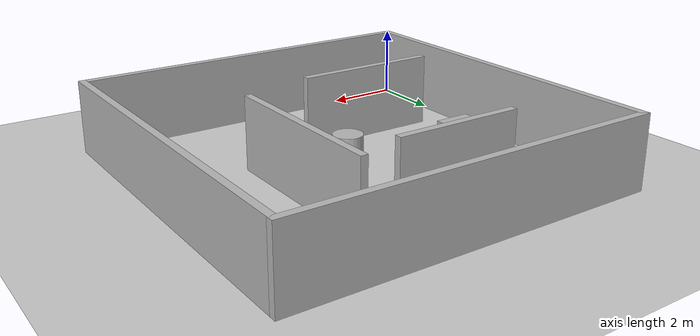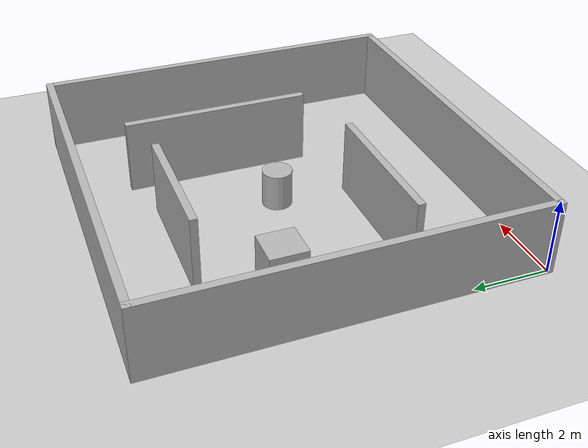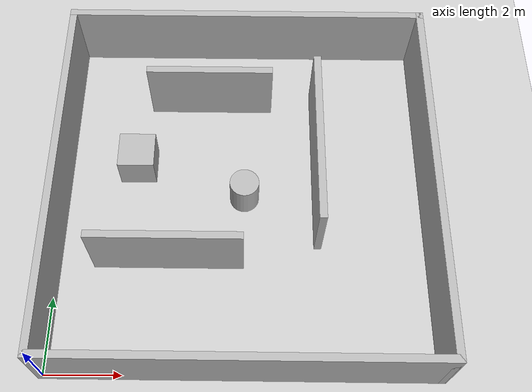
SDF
<?xml version="1.0" ?>
<sdf version="1.6">
  <world name="indoor_maze">
    <include>
      <uri>model://sun</uri>
    </include>
    <include>
      <uri>model://ground_plane</uri>
    </include>

    <!-- Outer Walls (10x10 meters environment) -->
    <!-- South Wall -->
    <model name="wall_south">
      <static>true</static>
      <pose>5 0 1 0 0 0</pose>
      <link name="link">
        <collision name="col"><geometry><box><size>10.2 0.2 2.0</size></box></geometry></collision>
        <visual name="vis"><geometry><box><size>10.2 0.2 2.0</size></box></geometry></visual>
      </link>
    </model>

    <!-- North Wall -->
    <model name="wall_north">
      <static>true</static>
      <pose>5 10 1 0 0 0</pose>
      <link name="link">
        <collision name="col"><geometry><box><size>10.2 0.2 2.0</size></box></geometry></collision>
        <visual name="vis"><geometry><box><size>10.2 0.2 2.0</size></box></geometry></visual>
      </link>
    </model>

    <!-- West Wall -->
    <model name="wall_west">
      <static>true</static>
      <pose>0 5 1 0 0 1.5708</pose>
      <link name="link">
        <collision name="col"><geometry><box><size>10.2 0.2 2.0</size></box></geometry></collision>
        <visual name="vis"><geometry><box><size>10.2 0.2 2.0</size></box></geometry></visual>
      </link>
    </model>

    <!-- East Wall -->
    <model name="wall_east">
      <static>true</static>
      <pose>10 5 1 0 0 1.5708</pose>
      <link name="link">
        <collision name="col"><geometry><box><size>10.2 0.2 2.0</size></box></geometry></collision>
        <visual name="vis"><geometry><box><size>10.2 0.2 2.0</size></box></geometry></visual>
      </link>
    </model>

    <!-- Inner Maze Walls & Barriers -->
    <model name="inner_wall_1">
      <static>true</static>
      <pose>3 3 1 0 0 0</pose>
      <link name="link">
        <collision name="col"><geometry><box><size>4.0 0.2 2.0</size></box></geometry></collision>
        <visual name="vis"><geometry><box><size>4.0 0.2 2.0</size></box></geometry></visual>
      </link>
    </model>

    <model name="inner_wall_2">
      <static>true</static>
      <pose>7 6 1 0 0 1.5708</pose>
      <link name="link">
        <collision name="col"><geometry><box><size>5.0 0.2 2.0</size></box></geometry></collision>
        <visual name="vis"><geometry><box><size>5.0 0.2 2.0</size></box></geometry></visual>
      </link>
    </model>

    <model name="inner_wall_3">
      <static>true</static>
      <pose>4 8 1 0 0 0</pose>
      <link name="link">
        <collision name="col"><geometry><box><size>3.5 0.2 2.0</size></box></geometry></collision>
        <visual name="vis"><geometry><box><size>3.5 0.2 2.0</size></box></geometry></visual>
      </link>
    </model>

    <!-- Static Obstacle Box -->
    <model name="obstacle_box_1">
      <static>true</static>
      <pose>2 6 0.5 0 0 0</pose>
      <link name="link">
        <collision name="col"><geometry><box><size>1.0 1.0 1.0</size></box></geometry></collision>
        <visual name="vis"><geometry><box><size>1.0 1.0 1.0</size></box></geometry></visual>
      </link>
    </model>

    <!-- Dynamic Obstacle Cylinder (Can be controlled or scripted) -->
    <model name="dynamic_obstacle">
      <static>false</static>
      <pose>5 5 0.5 0 0 0</pose>
      <link name="link">
        <collision name="col"><geometry><cylinder><radius>0.4</radius><length>1.0</length></cylinder></geometry></collision>
        <visual name="vis"><geometry><cylinder><radius>0.4</radius><length>1.0</length></cylinder></geometry></visual>
      </link>
    </model>

  </world>
</sdf>
